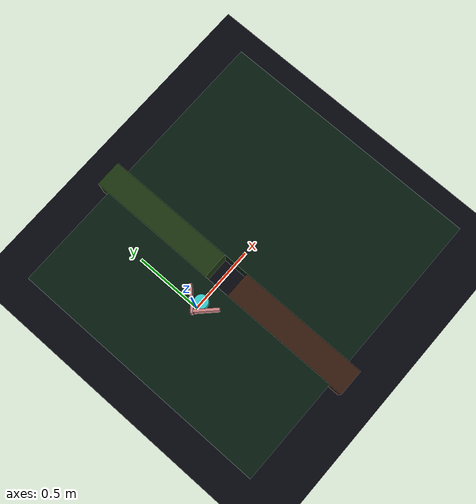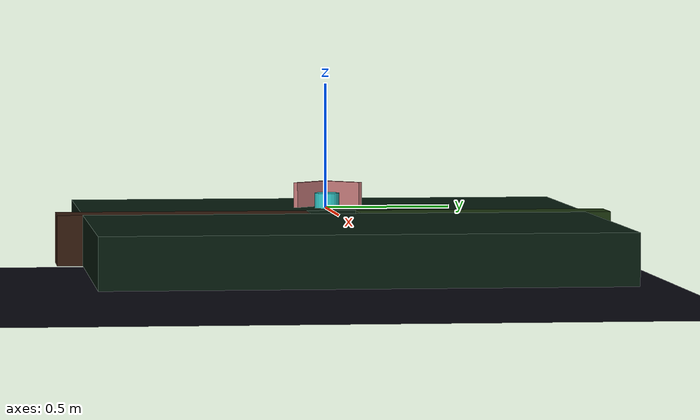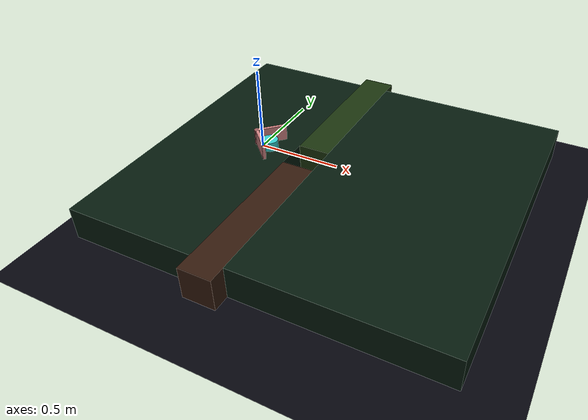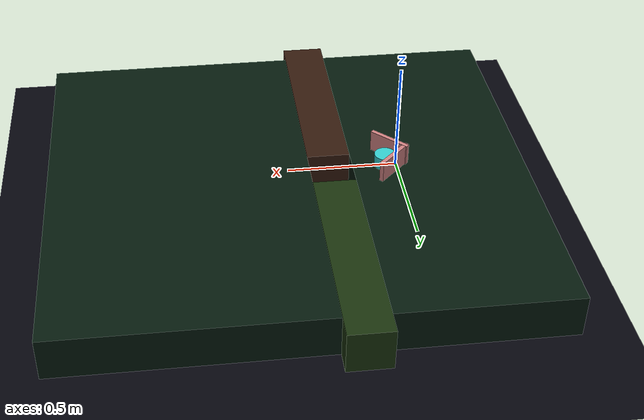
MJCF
<?xml version="1.0" encoding="utf-8" ?>
<mujoco>
    <option timestep="0.002" viscosity="0.001">
        <flag multiccd="enable"/>
    </option>
    <default>
        <geom friction="0.04 0.001 0.0001"/>
    </default>
    <worldbody>
        <body name="floor" pos="0 0 -0.3">
            <geom type="plane" name="floor" size="2 2 0.1" rgba="0.02 0.02 0.05 1"/>
        </body>
        <body name="table1" pos="-0.2 0 -0.1">
            <geom type="box" name="table1" size="0.4 1 0.1" rgba="0.02 0.1 0.05 1"/>
        </body>
        <body name="table2" pos="0.3 -0.6 -0.1">
            <geom type="box" name="table2" size="0.1 0.5 0.1" rgba="0.2 0.1 0.05 1"/>
        </body>
        <body name="table3" pos="0.3 0.6 -0.1">
            <geom type="box" name="table3" size="0.1 0.5 0.1" rgba="0.1 0.2 0.05 1"/>
        </body>
        <body name="table4" pos="1.0 0 -0.1">
            <geom type="box" name="table4" size="0.6 1 0.1" rgba="0.02 0.1 0.05 1"/>
        </body>
        <body name="robot" pos="0.02 0.0 0.055">
            <geom type="box" name="top_finger" pos="0 0.06 0" euler="0 0 45" size="0.1 0.01 0.05" rgba="0.8 0.5 0.5 1"/>
            <geom type="box" name="bottom_finger" pos="0 -0.06 0" euler="0 0 -45" size="0.1 0.01 0.05" rgba="0.8 0.5 0.5 1"/>
            <joint type="slide" name="x" pos="0 0 0" axis="1 0 0" damping="2" />
            <joint type="slide" name="y" pos="0 0 0" axis="0 1 0" damping="2" />
            <joint type="hinge" name="z" pos="0 0 0" axis="0 0 1" damping="2" />
        </body>
        <body name="object" pos="0.05 0 0.031">
            <geom type="cylinder" name="base" size="0.05 0.03" rgba="0.2 0.8 0.8 1"/>
            <joint type="free"  damping="0.01"/>
        </body>
    </worldbody>
    <actuator>
        <velocity name="x" joint="x" kv="50"/>
        <velocity name="y" joint="y" kv="50"/>
        <velocity name="z" joint="z" kv="2"/>
    </actuator>
</mujoco>
